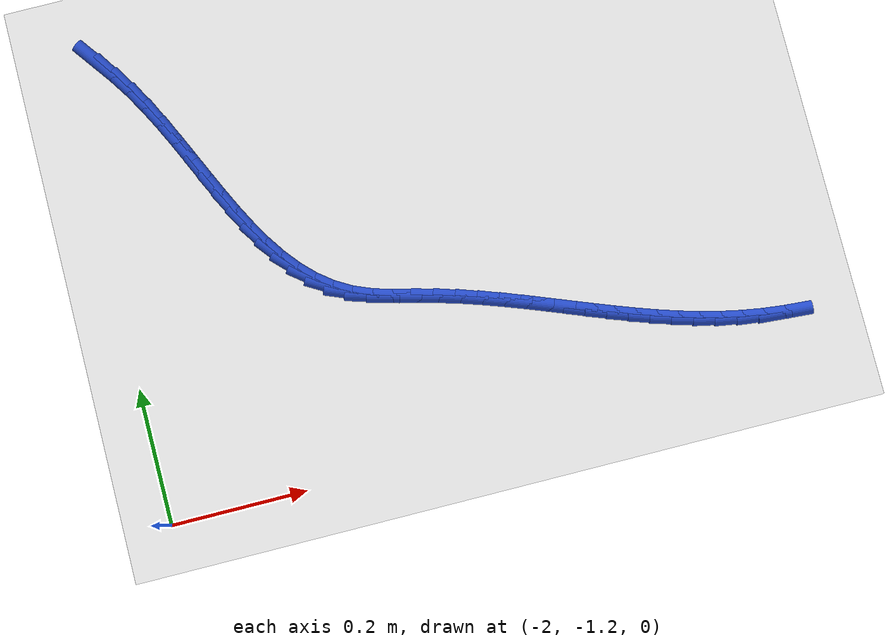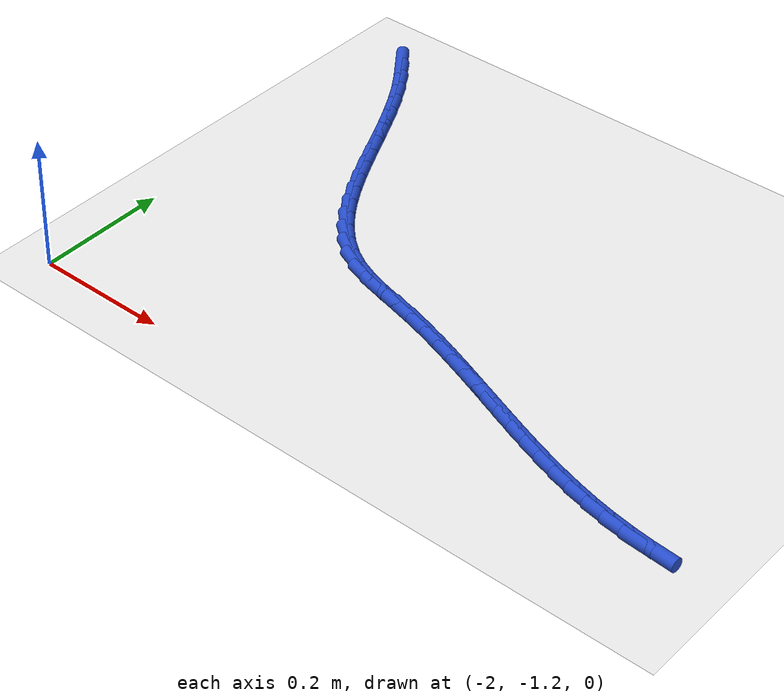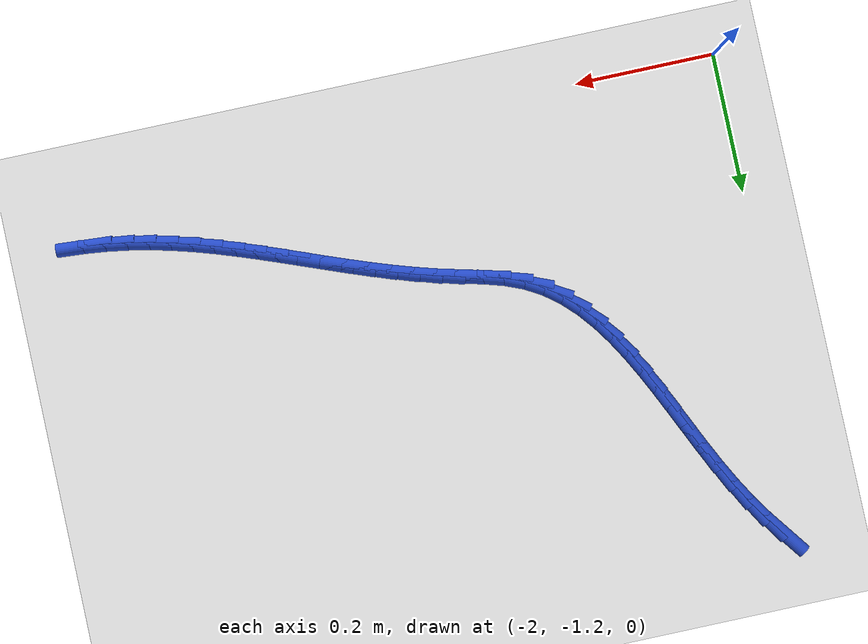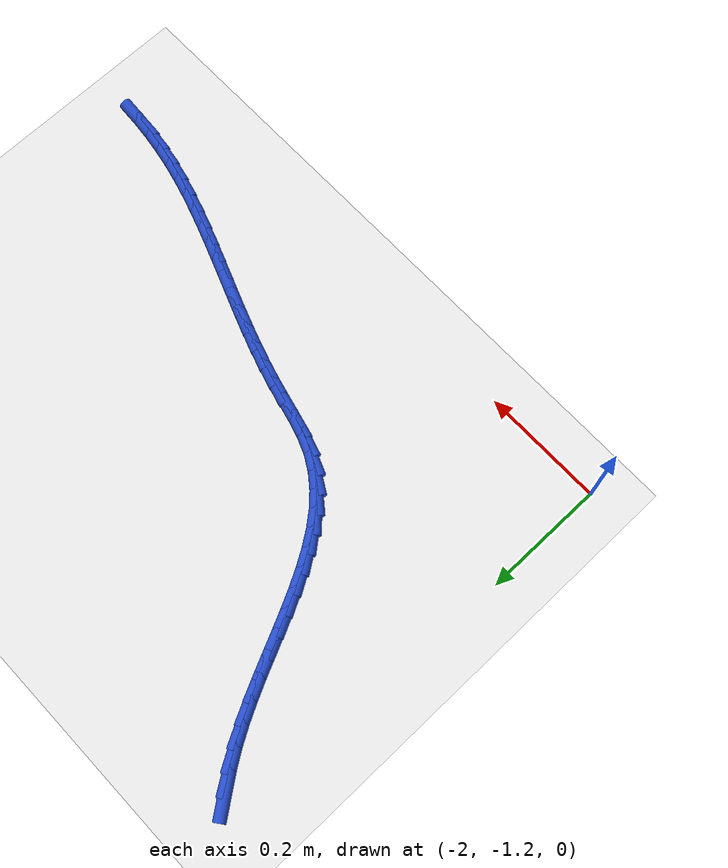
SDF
<sdf version="1.6">
 <world name="default">
  <model name="ground_plane">
   <static>1</static>
   <link name="link">
    <collision name="collision">
     <geometry><plane><normal>0 0 1</normal><size>100 100</size></plane></geometry>
     <surface><friction><ode><mu>100</mu><mu2>50</mu2></ode></friction></surface>
    </collision>
    <visual name="visual">
     <cast_shadows>0</cast_shadows>
     <geometry><plane><normal>0 0 1</normal><size>100 100</size></plane></geometry>
     <material>
      <script><uri>file://media/materials/scripts/gazebo.material</uri><name>Gazebo/WhiteGlow</name></script>
     </material>
    </visual>
   </link>
  </model>
  <model name="line">
   <link name="link_130">
    <pose>-1.9491663000292272 -0.5178091328475555 0.01 0 1.57 -0.9332151921754257</pose>
    <collision name="collision">
     <geometry><cylinder><radius>0.01</radius><length>0.08</length></cylinder></geometry>
    </collision>
    <visual name="visual">
     <material>
      <script><name>Gazebo/Blue</name><uri>file://media/materials/scripts/gazebo.material</uri></script>
     </material>
     <geometry><cylinder><radius>0.01</radius><length>0.08</length></cylinder></geometry>
    </visual>
   </link>
   <link name="link_131">
    <pose>-1.9297946268119488 -0.5439591237209278 0.01 0 1.57 -0.9833555522226051</pose>
    <collision name="collision">
     <geometry><cylinder><radius>0.01</radius><length>0.08</length></cylinder></geometry>
    </collision>
    <visual name="visual">
     <material>
      <script><name>Gazebo/Blue</name><uri>file://media/materials/scripts/gazebo.material</uri></script>
     </material>
     <geometry><cylinder><radius>0.01</radius><length>0.08</length></cylinder></geometry>
    </visual>
   </link>
   <link name="link_132">
    <pose>-1.911563380074354 -0.5713393111474654 0.01 0 1.57 -1.039561549768871</pose>
    <collision name="collision">
     <geometry><cylinder><radius>0.01</radius><length>0.08</length></cylinder></geometry>
    </collision>
    <visual name="visual">
     <material>
      <script><name>Gazebo/Blue</name><uri>file://media/materials/scripts/gazebo.material</uri></script>
     </material>
     <geometry><cylinder><radius>0.01</radius><length>0.08</length></cylinder></geometry>
    </visual>
   </link>
   <link name="link_133">
    <pose>-1.8946984943867151 -0.6000417431362285 0.01 0 1.57 -1.0835260035562968</pose>
    <collision name="collision">
     <geometry><cylinder><radius>0.01</radius><length>0.08</length></cylinder></geometry>
    </collision>
    <visual name="visual">
     <material>
      <script><name>Gazebo/Blue</name><uri>file://media/materials/scripts/gazebo.material</uri></script>
     </material>
     <geometry><cylinder><radius>0.01</radius><length>0.08</length></cylinder></geometry>
    </visual>
   </link>
   <link name="link_134">
    <pose>-1.87895197299514 -0.6297584990569589 0.01 0 1.57 -1.1142468286616831</pose>
    <collision name="collision">
     <geometry><cylinder><radius>0.01</radius><length>0.08</length></cylinder></geometry>
    </collision>
    <visual name="visual">
     <material>
      <script><name>Gazebo/Blue</name><uri>file://media/materials/scripts/gazebo.material</uri></script>
     </material>
     <geometry><cylinder><radius>0.01</radius><length>0.08</length></cylinder></geometry>
    </visual>
   </link>
   <link name="link_135">
    <pose>-1.8640288471847828 -0.6601420168580552 0.01 0 1.57 -1.1323849995782171</pose>
    <collision name="collision">
     <geometry><cylinder><radius>0.01</radius><length>0.08</length></cylinder></geometry>
    </collision>
    <visual name="visual">
     <material>
      <script><name>Gazebo/Blue</name><uri>file://media/materials/scripts/gazebo.material</uri></script>
     </material>
     <geometry><cylinder><radius>0.01</radius><length>0.08</length></cylinder></geometry>
    </visual>
   </link>
   <link name="link_136">
    <pose>-1.8496341482407952 -0.6908447344879121 0.01 0 1.57 -1.1382851930708089</pose>
    <collision name="collision">
     <geometry><cylinder><radius>0.01</radius><length>0.08</length></cylinder></geometry>
    </collision>
    <visual name="visual">
     <material>
      <script><name>Gazebo/Blue</name><uri>file://media/materials/scripts/gazebo.material</uri></script>
     </material>
     <geometry><cylinder><radius>0.01</radius><length>0.08</length></cylinder></geometry>
    </visual>
   </link>
   <link name="link_137">
    <pose>-1.83547290744833 -0.7215190898949282 0.01 0 1.57 -1.131908933179531</pose>
    <collision name="collision">
     <geometry><cylinder><radius>0.01</radius><length>0.08</length></cylinder></geometry>
    </collision>
    <visual name="visual">
     <material>
      <script><name>Gazebo/Blue</name><uri>file://media/materials/scripts/gazebo.material</uri></script>
     </material>
     <geometry><cylinder><radius>0.01</radius><length>0.08</length></cylinder></geometry>
    </visual>
   </link>
   <link name="link_138">
    <pose>-1.8212501560925398 -0.7518175210275001 0.01 0 1.57 -1.1127974914046235</pose>
    <collision name="collision">
     <geometry><cylinder><radius>0.01</radius><length>0.08</length></cylinder></geometry>
    </collision>
    <visual name="visual">
     <material>
      <script><name>Gazebo/Blue</name><uri>file://media/materials/scripts/gazebo.material</uri></script>
     </material>
     <geometry><cylinder><radius>0.01</radius><length>0.08</length></cylinder></geometry>
    </visual>
   </link>
   <link name="link_139">
    <pose>-1.8066709254585755 -0.7813924658340254 0.01 0 1.57 -1.0800581398560813</pose>
    <collision name="collision">
     <geometry><cylinder><radius>0.01</radius><length>0.08</length></cylinder></geometry>
    </collision>
    <visual name="visual">
     <material>
      <script><name>Gazebo/Blue</name><uri>file://media/materials/scripts/gazebo.material</uri></script>
     </material>
     <geometry><cylinder><radius>0.01</radius><length>0.08</length></cylinder></geometry>
    </visual>
   </link>
   <link name="link_140">
    <pose>-1.7914402468315913 -0.8098963622629 0.01 0 1.57 -1.0323902284743176</pose>
    <collision name="collision">
     <geometry><cylinder><radius>0.01</radius><length>0.08</length></cylinder></geometry>
    </collision>
    <visual name="visual">
     <material>
      <script><name>Gazebo/Blue</name><uri>file://media/materials/scripts/gazebo.material</uri></script>
     </material>
     <geometry><cylinder><radius>0.01</radius><length>0.08</length></cylinder></geometry>
    </visual>
   </link>
   <link name="link_141">
    <pose>-1.7752631514967385 -0.8369816482625215 0.01 0 1.57 -0.9681982037549821</pose>
    <collision name="collision">
     <geometry><cylinder><radius>0.01</radius><length>0.08</length></cylinder></geometry>
    </collision>
    <visual name="visual">
     <material>
      <script><name>Gazebo/Blue</name><uri>file://media/materials/scripts/gazebo.material</uri></script>
     </material>
     <geometry><cylinder><radius>0.01</radius><length>0.08</length></cylinder></geometry>
    </visual>
   </link>
   <link name="link_142">
    <pose>-1.7578446707391706 -0.8623007617812872 0.01 0 1.57 -0.8858774881434642</pose>
    <collision name="collision">
     <geometry><cylinder><radius>0.01</radius><length>0.08</length></cylinder></geometry>
    </collision>
    <visual name="visual">
     <material>
      <script><name>Gazebo/Blue</name><uri>file://media/materials/scripts/gazebo.material</uri></script>
     </material>
     <geometry><cylinder><radius>0.01</radius><length>0.08</length></cylinder></geometry>
    </visual>
   </link>
   <link name="link_143">
    <pose>-1.7388898358440388 -0.8855061407675943 0.01 0 1.57 -0.7843850382445481</pose>
    <collision name="collision">
     <geometry><cylinder><radius>0.01</radius><length>0.08</length></cylinder></geometry>
    </collision>
    <visual name="visual">
     <material>
      <script><name>Gazebo/Blue</name><uri>file://media/materials/scripts/gazebo.material</uri></script>
     </material>
     <geometry><cylinder><radius>0.01</radius><length>0.08</length></cylinder></geometry>
    </visual>
   </link>
   <link name="link_144">
    <pose>-1.7181036780964967 -0.9062502231698389 0.01 0 1.57 -0.6641474300691154</pose>
    <collision name="collision">
     <geometry><cylinder><radius>0.01</radius><length>0.08</length></cylinder></geometry>
    </collision>
    <visual name="visual">
     <material>
      <script><name>Gazebo/Blue</name><uri>file://media/materials/scripts/gazebo.material</uri></script>
     </material>
     <geometry><cylinder><radius>0.01</radius><length>0.08</length></cylinder></geometry>
    </visual>
   </link>
   <link name="link_145">
    <pose>-1.6951912287816957 -0.9241854469364188 0.01 0 1.57 -0.5280981804861365</pose>
    <collision name="collision">
     <geometry><cylinder><radius>0.01</radius><length>0.08</length></cylinder></geometry>
    </collision>
    <visual name="visual">
     <material>
      <script><name>Gazebo/Blue</name><uri>file://media/materials/scripts/gazebo.material</uri></script>
     </material>
     <geometry><cylinder><radius>0.01</radius><length>0.08</length></cylinder></geometry>
    </visual>
   </link>
   <link name="link_146">
    <pose>-1.6698575191847889 -0.9389642500157307 0.01 0 1.57 -0.38799208092205617</pose>
    <collision name="collision">
     <geometry><cylinder><radius>0.01</radius><length>0.08</length></cylinder></geometry>
    </collision>
    <visual name="visual">
     <material>
      <script><name>Gazebo/Blue</name><uri>file://media/materials/scripts/gazebo.material</uri></script>
     </material>
     <geometry><cylinder><radius>0.01</radius><length>0.08</length></cylinder></geometry>
    </visual>
   </link>
   <link name="link_147">
    <pose>-1.6419146509324567 -0.9503847701503034 0.01 0 1.57 -0.28965200374429384</pose>
    <collision name="collision">
     <geometry><cylinder><radius>0.01</radius><length>0.08</length></cylinder></geometry>
    </collision>
    <visual name="visual">
     <material>
      <script><name>Gazebo/Blue</name><uri>file://media/materials/scripts/gazebo.material</uri></script>
     </material>
     <geometry><cylinder><radius>0.01</radius><length>0.08</length></cylinder></geometry>
    </visual>
   </link>
   <link name="link_148">
    <pose>-1.6119591165942955 -0.9593125330938612 0.01 0 1.57 -0.24557218681824008</pose>
    <collision name="collision">
     <geometry><cylinder><radius>0.01</radius><length>0.08</length></cylinder></geometry>
    </collision>
    <visual name="visual">
     <material>
      <script><name>Gazebo/Blue</name><uri>file://media/materials/scripts/gazebo.material</uri></script>
     </material>
     <geometry><cylinder><radius>0.01</radius><length>0.08</length></cylinder></geometry>
    </visual>
   </link>
   <link name="link_149">
    <pose>-1.5809362831644072 -0.9670878079427025 0.01 0 1.57 -0.2500203277675807</pose>
    <collision name="collision">
     <geometry><cylinder><radius>0.01</radius><length>0.08</length></cylinder></geometry>
    </collision>
    <visual name="visual">
     <material>
      <script><name>Gazebo/Blue</name><uri>file://media/materials/scripts/gazebo.material</uri></script>
     </material>
     <geometry><cylinder><radius>0.01</radius><length>0.08</length></cylinder></geometry>
    </visual>
   </link>
   <link name="link_150">
    <pose>-1.549786038450979 -0.9750424457780655 0.01 0 1.57 -0.28168314059739835</pose>
    <collision name="collision">
     <geometry><cylinder><radius>0.01</radius><length>0.08</length></cylinder></geometry>
    </collision>
    <visual name="visual">
     <material>
      <script><name>Gazebo/Blue</name><uri>file://media/materials/scripts/gazebo.material</uri></script>
     </material>
     <geometry><cylinder><radius>0.01</radius><length>0.08</length></cylinder></geometry>
    </visual>
   </link>
   <link name="link_151">
    <pose>-1.519063791742683 -0.9839327734975917 0.01 0 1.57 -0.31037944341539364</pose>
    <collision name="collision">
     <geometry><cylinder><radius>0.01</radius><length>0.08</length></cylinder></geometry>
    </collision>
    <visual name="visual">
     <material>
      <script><name>Gazebo/Blue</name><uri>file://media/materials/scripts/gazebo.material</uri></script>
     </material>
     <geometry><cylinder><radius>0.01</radius><length>0.08</length></cylinder></geometry>
    </visual>
   </link>
   <link name="link_152">
    <pose>-1.4887507287038249 -0.9936555652129007 0.01 0 1.57 -0.3334724834267262</pose>
    <collision name="collision">
     <geometry><cylinder><radius>0.01</radius><length>0.08</length></cylinder></geometry>
    </collision>
    <visual name="visual">
     <material>
      <script><name>Gazebo/Blue</name><uri>file://media/materials/scripts/gazebo.material</uri></script>
     </material>
     <geometry><cylinder><radius>0.01</radius><length>0.08</length></cylinder></geometry>
    </visual>
   </link>
   <link name="link_153">
    <pose>-1.458781093363306 -1.0040373283106265 0.01 0 1.57 -0.35085650882481606</pose>
    <collision name="collision">
     <geometry><cylinder><radius>0.01</radius><length>0.08</length></cylinder></geometry>
    </collision>
    <visual name="visual">
     <material>
      <script><name>Gazebo/Blue</name><uri>file://media/materials/scripts/gazebo.material</uri></script>
     </material>
     <geometry><cylinder><radius>0.01</radius><length>0.08</length></cylinder></geometry>
    </visual>
   </link>
   <link name="link_154">
    <pose>-1.4290891297500266 -1.0149045701774035 0.01 0 1.57 -0.36245944906605587</pose>
    <collision name="collision">
     <geometry><cylinder><radius>0.01</radius><length>0.08</length></cylinder></geometry>
    </collision>
    <visual name="visual">
     <material>
      <script><name>Gazebo/Blue</name><uri>file://media/materials/scripts/gazebo.material</uri></script>
     </material>
     <geometry><cylinder><radius>0.01</radius><length>0.08</length></cylinder></geometry>
    </visual>
   </link>
   <link name="link_155">
    <pose>-1.3996090818928861 -1.0260837981998658 0.01 0 1.57 -0.36822637806775776</pose>
    <collision name="collision">
     <geometry><cylinder><radius>0.01</radius><length>0.08</length></cylinder></geometry>
    </collision>
    <visual name="visual">
     <material>
      <script><name>Gazebo/Blue</name><uri>file://media/materials/scripts/gazebo.material</uri></script>
     </material>
     <geometry><cylinder><radius>0.01</radius><length>0.08</length></cylinder></geometry>
    </visual>
   </link>
   <link name="link_156">
    <pose>-1.3702751938207842 -1.0374015197646482 0.01 0 1.57 -0.3681080282020857</pose>
    <collision name="collision">
     <geometry><cylinder><radius>0.01</radius><length>0.08</length></cylinder></geometry>
    </collision>
    <visual name="visual">
     <material>
      <script><name>Gazebo/Blue</name><uri>file://media/materials/scripts/gazebo.material</uri></script>
     </material>
     <geometry><cylinder><radius>0.01</radius><length>0.08</length></cylinder></geometry>
    </visual>
   </link>
   <link name="link_157">
    <pose>-1.3410217095626225 -1.048684242258384 0.01 0 1.57 -0.362054924982172</pose>
    <collision name="collision">
     <geometry><cylinder><radius>0.01</radius><length>0.08</length></cylinder></geometry>
    </collision>
    <visual name="visual">
     <material>
      <script><name>Gazebo/Blue</name><uri>file://media/materials/scripts/gazebo.material</uri></script>
     </material>
     <geometry><cylinder><radius>0.01</radius><length>0.08</length></cylinder></geometry>
    </visual>
   </link>
   <link name="link_158">
    <pose>-1.311782873147301 -1.0597584730677079 0.01 0 1.57 -0.35001753811203146</pose>
    <collision name="collision">
     <geometry><cylinder><radius>0.01</radius><length>0.08</length></cylinder></geometry>
    </collision>
    <visual name="visual">
     <material>
      <script><name>Gazebo/Blue</name><uri>file://media/materials/scripts/gazebo.material</uri></script>
     </material>
     <geometry><cylinder><radius>0.01</radius><length>0.08</length></cylinder></geometry>
    </visual>
   </link>
   <link name="link_159">
    <pose>-1.2824929286037192 -1.0704507195792536 0.01 0 1.57 -0.3319528109355667</pose>
    <collision name="collision">
     <geometry><cylinder><radius>0.01</radius><length>0.08</length></cylinder></geometry>
    </collision>
    <visual name="visual">
     <material>
      <script><name>Gazebo/Blue</name><uri>file://media/materials/scripts/gazebo.material</uri></script>
     </material>
     <geometry><cylinder><radius>0.01</radius><length>0.08</length></cylinder></geometry>
    </visual>
   </link>
   <link name="link_160">
    <pose>-1.2530861199607766 -1.0805874891796563 0.01 0 1.57 -0.3078373868048115</pose>
    <collision name="collision">
     <geometry><cylinder><radius>0.01</radius><length>0.08</length></cylinder></geometry>
    </collision>
    <visual name="visual">
     <material>
      <script><name>Gazebo/Blue</name><uri>file://media/materials/scripts/gazebo.material</uri></script>
     </material>
     <geometry><cylinder><radius>0.01</radius><length>0.08</length></cylinder></geometry>
    </visual>
   </link>
   <link name="link_161">
    <pose>-1.2234966912473755 -1.0899952892555496 0.01 0 1.57 -0.27768762253663326</pose>
    <collision name="collision">
     <geometry><cylinder><radius>0.01</radius><length>0.08</length></cylinder></geometry>
    </collision>
    <visual name="visual">
     <material>
      <script><name>Gazebo/Blue</name><uri>file://media/materials/scripts/gazebo.material</uri></script>
     </material>
     <geometry><cylinder><radius>0.01</radius><length>0.08</length></cylinder></geometry>
    </visual>
   </link>
   <link name="link_162">
    <pose>-1.193658886492415 -1.0985006271935673 0.01 0 1.57 -0.24158587891784183</pose>
    <collision name="collision">
     <geometry><cylinder><radius>0.01</radius><length>0.08</length></cylinder></geometry>
    </collision>
    <visual name="visual">
     <material>
      <script><name>Gazebo/Blue</name><uri>file://media/materials/scripts/gazebo.material</uri></script>
     </material>
     <geometry><cylinder><radius>0.01</radius><length>0.08</length></cylinder></geometry>
    </visual>
   </link>
   <link name="link_163">
    <pose>-1.1635069497247947 -1.1059300103803442 0.01 0 1.57 -0.1999495869816514</pose>
    <collision name="collision">
     <geometry><cylinder><radius>0.01</radius><length>0.08</length></cylinder></geometry>
    </collision>
    <visual name="visual">
     <material>
      <script><name>Gazebo/Blue</name><uri>file://media/materials/scripts/gazebo.material</uri></script>
     </material>
     <geometry><cylinder><radius>0.01</radius><length>0.08</length></cylinder></geometry>
    </visual>
   </link>
   <link name="link_164">
    <pose>-1.13297920270672 -1.1121166888434484 0.01 0 1.57 -0.15625057468618309</pose>
    <collision name="collision">
     <geometry><cylinder><radius>0.01</radius><length>0.08</length></cylinder></geometry>
    </collision>
    <visual name="visual">
     <material>
      <script><name>Gazebo/Blue</name><uri>file://media/materials/scripts/gazebo.material</uri></script>
     </material>
     <geometry><cylinder><radius>0.01</radius><length>0.08</length></cylinder></geometry>
    </visual>
   </link>
   <link name="link_165">
    <pose>-1.10206966669418 -1.1169860132111384 0.01 0 1.57 -0.11289977176792126</pose>
    <collision name="collision">
     <geometry><cylinder><radius>0.01</radius><length>0.08</length></cylinder></geometry>
    </collision>
    <visual name="visual">
     <material>
      <script><name>Gazebo/Blue</name><uri>file://media/materials/scripts/gazebo.material</uri></script>
     </material>
     <geometry><cylinder><radius>0.01</radius><length>0.08</length></cylinder></geometry>
    </visual>
   </link>
   <link name="link_166">
    <pose>-1.0708126748184346 -1.1205299908741502 0.01 0 1.57 -0.06995786348281349</pose>
    <collision name="collision">
     <geometry><cylinder><radius>0.01</radius><length>0.08</length></cylinder></geometry>
    </collision>
    <visual name="visual">
     <material>
      <script><name>Gazebo/Blue</name><uri>file://media/materials/scripts/gazebo.material</uri></script>
     </material>
     <geometry><cylinder><radius>0.01</radius><length>0.08</length></cylinder></geometry>
    </visual>
   </link>
  </model>
 </world>
</sdf>
